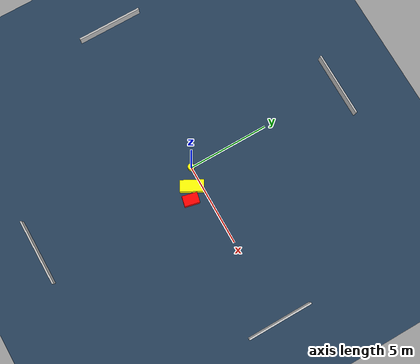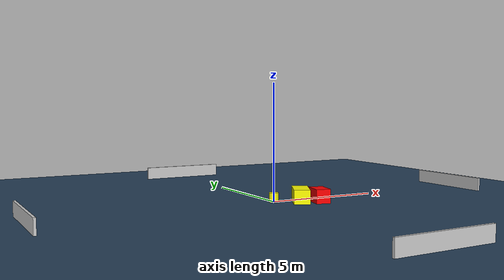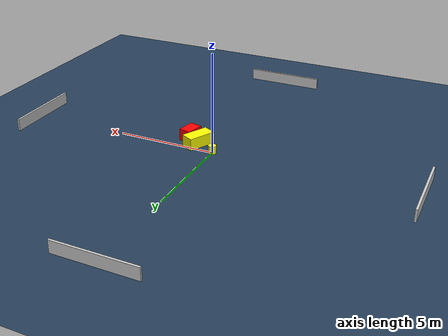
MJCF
<?xml version="1.0" ?>
<mujoco model="generated_environment">
  <option timestep="0.01" integrator="RK4" cone="elliptic"/>
  <default>
    <geom density="1"/>
  </default>
  <asset>
    <texture builtin="gradient" height="3072" name="skybox" rgb1="0.3 0.5 0.7" rgb2="0 0 0" type="skybox" width="512"/>
    <texture builtin="checker" height="300" name="groundplane" rgb1="0.2 0.3 0.4" rgb2="0.1 0.2 0.3" type="2d" width="300"/>
    <material name="groundplane" reflectance="0.2" texrepeat="5 5" texture="groundplane"/>
  </asset>
  <worldbody>
    <light dir="0 0 -1" directional="true" pos="0 0 1.5"/>
    <geom condim="3" friction="0.5 0.005 0.001" material="groundplane" name="floor" pos="0 0 0" size="0 0 0.05" type="plane"/>
    <body name="walls">
      <geom name="wall_1" condim="4" pos="-10.0 0.0 0.3" rgba="0.800000011920929 0.800000011920929 0.800000011920929 1.0" size="0.05 2.0 0.3" type="box"/>
      <geom name="wall_2" condim="4" pos="10.0 0.0 0.3" rgba="0.800000011920929 0.800000011920929 0.800000011920929 1.0" size="0.05 2.0 0.3" type="box"/>
      <geom name="wall_3" condim="4" pos="0.0 -10.0 0.3" rgba="0.800000011920929 0.800000011920929 0.800000011920929 1.0" size="2.0 0.05 0.3" type="box"/>
      <geom name="wall_4" condim="4" pos="0.0 10.0 0.3" rgba="0.800000011920929 0.800000011920929 0.800000011920929 1.0" size="2.0 0.05 0.3" type="box"/>
    </body>
    <body name="robot">
      <joint name="joint_x" type="slide" pos="0 0 0" axis="1 0 0"/>
      <joint name="joint_y" type="slide" pos="0 0 0" axis="0 1 0"/>
      <geom name="robot" type="cylinder" pos="0.0 0.0 0.2" size="0.2 0.2 0.0" mass="5.0" friction="1.0 0.005 0.0001" condim="4" rgba="1.0 1.0 0.0 1.0"/>
    </body>
    <body name="obstacle_1_movable">
      <geom name="obstacle_1_movable" condim="4" pos="1.0069918713129151 -0.5245379622096847 0.3" euler="0 0 242.5373390455053" friction="0.0 0.005 0.001" rgba="1.0 1.0 0.0 1.0" size="0.7054955630546551 0.3424815061647718 0.3" type="box" mass="0.1"/>
      <joint type="free"/>
    </body>
    <body name="obstacle_2_static">
      <geom name="obstacle_2_static" condim="4" pos="1.6672273043830028 -0.9644494572132057 0.3" euler="0 0 347.4235399619709" friction="0.0 0.005 0.001" rgba="1.0 0.0 0.0 1.0" size="0.30896979480500447 0.45889284445028533 0.3" type="box"/>
    </body>
  </worldbody>
  <actuator>
    <motor name="actuator_x" joint="joint_x" gear="1" ctrlrange="-1 1"/>
    <motor name="actuator_y" joint="joint_y" gear="1" ctrlrange="-1 1"/>
  </actuator>
</mujoco>
